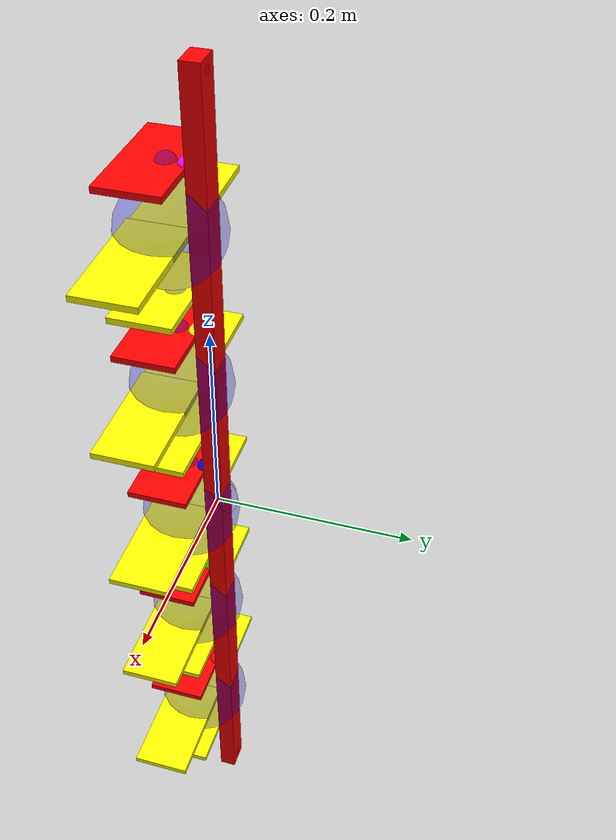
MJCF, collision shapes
<mujoco model="shelf_ivar_0678">
    <asset>
        <mesh file="shelf_ivar_0678/box.stl" name="box_mesh" scale="0.0005 0.0005 0.0005" />
        <mesh file="shelf_ivar_0678/column.stl" name="column_mesh" scale="0.0005 0.0005 0.0005" />
        <texture file="../textures/light-wood.png" name="tex-light-wood" type="2d" />
        <material name="light-wood" reflectance="0.5" texrepeat="20 20" texture="tex-light-wood" texuniform="true" />
    </asset>
    <equality>
        <weld active="false" body1="1_column" body2="2_box1" solimp="1 1 0.5" solref="0.01 0.3" />
        <weld active="false" body1="1_column" body2="3_box2" solimp="1 1 0.5" solref="0.01 0.3" />
        <weld active="false" body1="1_column" body2="4_box3" solimp="1 1 0.5" solref="0.01 0.3" />
        <weld active="false" body1="1_column" body2="5_box4" solimp="1 1 0.5" solref="0.01 0.3" />
        <weld active="false" body1="1_column" body2="6_box5" solimp="1 1 0.5" solref="0.01 0.3" />
    </equality>
    <worldbody>
        <body name="1_column" pos="0 0 0" quat="1 0 0 0">
            <geom density="1"  mesh="column_mesh" name="1_column_mesh" pos="0 0 0" rgba="0.82 0.71 0.55 1" type="mesh" contype="0" conaffinity="0" />
            <geom density="100"  name="noviz_collision_1_column" pos="0 0 0" solref="0.001 1" type="box" size="0.0135 0.009 0.45" rgba="1 0 0 1" />
            <site name="1_column_bottom_site" pos="0 0 -0.44" rgba="1 0 0 0.3" size="0.01" />
            <site name="1_column_top_site" pos="0.0 0.0 0.44" rgba="1 0 0 0.3" size="0.01" />
            <site name="1_column_horizontal_radius_site" pos="0 0 0" rgba="0 0 1 0.3" size="0.02" />
            <site name="col-box1,0,conn_site" pos="0 -0.01 -0.26" quat="0.707 0 0.707 0" rgba="1 0 0 1" size="0.01" />
            <site name="col-box2,0,conn_site" pos="0 -0.01 -0.10" quat="0.707 0 0.707 0" rgba="0 1 0 1" size="0.01" />
            <site name="col-box3,0,conn_site" pos="0 -0.01 0.04" quat="0.707 0 0.707 0" rgba="0 0 1 1" size="0.01" />
            <site name="col-box4,0,conn_site" pos="0 -0.01 0.20" quat="0.707 0 0.707 0" rgba="1 1 0 1" size="0.01" />
            <site name="col-box5,0,conn_site" pos="0 -0.01 0.36" quat="0.707 0 0.707 0" rgba="1 0 1 1" size="0.01" />
        </body>

        <body name="2_box1" pos="0 -0.03 -0.32" quat="1 0 0 0">
            <geom density="1" material="light-wood" mesh="box_mesh" name="2_box1_mesh" pos="0 0 0" rgba="0.82 0.71 0.55 1" type="mesh" contype="0" conaffinity="0" />
            <geom density="100"  name="noviz_collision_2_box1_top" pos="0 -0.01 0.06" solref="0.001 1" type="box" size="0.06 0.03 0.003" rgba="1 0 0 1" />
            <geom density="100"  name="noviz_collision_2_box1_bot" pos="0 -0.01 -0.06" solref="0.001 1" type="box" size="0.06 0.03 0.003" rgba="1 1 0 1" />
            <geom density="100"  name="noviz_collision_2_box1_side1" pos="-0.06 -0.01 0" euler="0 1.56  0" solref="0.001 1" type="box" size="0.06 0.03 0.003" rgba="1 1 0 1" />
            <geom density="100"  name="noviz_collision_2_box1_side2" pos="0.06 -0.01 0" euler="0 1.56  0" solref="0.001 1" type="box" size="0.06 0.03 0.003" rgba="1 1 0 1" />
            <site name="box1-col,0,conn_site" pos="0.0 0.025 0.06" quat="0.707 0 0.707 0" rgba="1 0 0 1" size="0.01" />
            <site name="2_box1_bottom_site" pos="0 0 -0.06" rgba="0 0 1 0.3" size="0.01" />
            <site name="2_box1_top_site" pos="0.0 0.0 0.06" rgba="0 0 1 0.3" size="0.01" />
            <site name="2_box1_horizontal_radius_site" pos="0 0 0" rgba="0 0 1 0.3" size="0.05" />

            <site name="2_box1_s1" pos="-0.06 0 0" rgba="0 0 1 0" size="0.01" />
            <site name="2_box1_s2" pos="0.06 0.0 0" rgba="0 0 1 0" size="0.01" />
            <site name="2_box1_s3" pos="0 -0.06 0" rgba="0 0 1 0" size="0.01" />
            <site name="2_box1_s4" pos="0.0 0.06 0" rgba="0 0 1 0" size="0.01" />
        </body>

        <body name="3_box2" pos="0 -0.03 -0.16" quat="1 0 0 0">
            <geom density="1" material="light-wood" mesh="box_mesh" name="3_box2_mesh" pos="0 0 0" rgba="0.82 0.71 0.55 1" type="mesh" contype="0" conaffinity="0" />
            <geom density="100"  name="noviz_collision_3_box2_top" pos="0 -0.01 0.06" solref="0.001 1" type="box" size="0.06 0.03 0.003" rgba="1 0 0 1" />
            <geom density="100"  name="noviz_collision_3_box2_bot" pos="0 -0.01 -0.06" solref="0.001 1" type="box" size="0.06 0.03 0.003" rgba="1 1 0 1" />
            <geom density="100"  name="noviz_collision_3_box2_side1" pos="-0.06 -0.01 0" euler="0 1.56  0" solref="0.001 1" type="box" size="0.06 0.03 0.003" rgba="1 1 0 1" />
            <geom density="100"  name="noviz_collision_3_box2_side2" pos="0.06 -0.01 0" euler="0 1.56  0" solref="0.001 1" type="box" size="0.06 0.03 0.003" rgba="1 1 0 1" />
            <site name="box2-col,0,conn_site" pos="0.0 0.025 0.06" quat="0.707 0 0.707 0" rgba="0 1 0 1" size="0.01" />
            <site name="3_box2_bottom_site" pos="0 0 -0.06" rgba="0 0 1 0.3" size="0.01" />
            <site name="3_box2_top_site" pos="0.0 0.0 0.06" rgba="0 0 1 0.3" size="0.01" />
            <site name="3_box2_horizontal_radius_site" pos="0 0 0" rgba="0 0 1 0.3" size="0.05" />

            <site name="3_box2_s1" pos="-0.06 0 0" rgba="0 0 1 0" size="0.01" />
            <site name="3_box2_s2" pos="0.06 0.0 0" rgba="0 0 1 0" size="0.01" />
            <site name="3_box2_s3" pos="0 -0.06 0" rgba="0 0 1 0" size="0.01" />
            <site name="3_box2_s4" pos="0.0 0.06 0" rgba="0 0 1 0" size="0.01" />
        </body>

        <body name="4_box3" pos="0 -0.03 -0.02" quat="1 0 0 0">
            <geom density="1" material="light-wood" mesh="box_mesh" name="4_box3_mesh" pos="0 0 0" rgba="0.82 0.71 0.55 1" type="mesh" contype="0" conaffinity="0" />
            <geom density="100"  name="noviz_collision_4_box3_top" pos="0 -0.01 0.06" solref="0.001 1" type="box" size="0.06 0.03 0.003" rgba="1 0 0 1" />
            <geom density="100"  name="noviz_collision_4_box3_bot" pos="0 -0.01 -0.06" solref="0.001 1" type="box" size="0.06 0.03 0.003" rgba="1 1 0 1" />
            <geom density="100"  name="noviz_collision_4_box3_side1" pos="-0.06 -0.01 0" euler="0 1.56  0" solref="0.001 1" type="box" size="0.06 0.03 0.003" rgba="1 1 0 1" />
            <geom density="100"  name="noviz_collision_4_box3_side2" pos="0.06 -0.01 0" euler="0 1.56  0" solref="0.001 1" type="box" size="0.06 0.03 0.003" rgba="1 1 0 1" />
            <site name="box3-col,0,conn_site" pos="0.0 0.025 0.06" quat="0.707 0 0.707 0" rgba="0 0 1 1" size="0.01" />
            <site name="4_box3_bottom_site" pos="0 0 -0.06" rgba="0 0 1 0.3" size="0.01" />
            <site name="4_box3_top_site" pos="0.0 0.0 0.06" rgba="0 0 1 0.3" size="0.01" />
            <site name="4_box3_horizontal_radius_site" pos="0 0 0" rgba="0 0 1 0.3" size="0.05" />

            <site name="4_box3_s1" pos="-0.06 0 0" rgba="0 0 1 0" size="0.01" />
            <site name="4_box3_s2" pos="0.06 0.0 0" rgba="0 0 1 0" size="0.01" />
            <site name="4_box3_s3" pos="0 -0.06 0" rgba="0 0 1 0" size="0.01" />
            <site name="4_box3_s4" pos="0.0 0.06 0" rgba="0 0 1 0" size="0.01" />
        </body>

        <body name="5_box4" pos="0 -0.03 0.14" quat="1 0 0 0">
            <geom density="1" material="light-wood" mesh="box_mesh" name="5_box4_mesh" pos="0 0 0" rgba="0.82 0.71 0.55 1" type="mesh" contype="0" conaffinity="0" />
            <geom density="100"  name="noviz_collision_5_box4_top" pos="0 -0.01 0.06" solref="0.001 1" type="box" size="0.06 0.03 0.003" rgba="1 0 0 1" />
            <geom density="100"  name="noviz_collision_5_box4_bot" pos="0 -0.01 -0.06" solref="0.001 1" type="box" size="0.06 0.03 0.003" rgba="1 1 0 1" />
            <geom density="100"  name="noviz_collision_5_box4_side1" pos="-0.06 -0.01 0" euler="0 1.56  0" solref="0.001 1" type="box" size="0.06 0.03 0.003" rgba="1 1 0 1" />
            <geom density="100"  name="noviz_collision_5_box4_side2" pos="0.06 -0.01 0" euler="0 1.56  0" solref="0.001 1" type="box" size="0.06 0.03 0.003" rgba="1 1 0 1" />
            <site name="box4-col,0,conn_site" pos="0.0 0.025 0.06" quat="0.707 0 0.707 0" rgba="1 1 0 1" size="0.01" />
            <site name="5_box4_bottom_site" pos="0 0 -0.06" rgba="0 0 1 0.3" size="0.01" />
            <site name="5_box4_top_site" pos="0.0 0.0 0.06" rgba="0 0 1 0.3" size="0.01" />
            <site name="5_box4_horizontal_radius_site" pos="0 0 0" rgba="0 0 1 0.3" size="0.05" />

            <site name="5_box4_s1" pos="-0.06 0 0" rgba="0 0 1 0" size="0.01" />
            <site name="5_box4_s2" pos="0.06 0.0 0" rgba="0 0 1 0" size="0.01" />
            <site name="5_box4_s3" pos="0 -0.06 0" rgba="0 0 1 0" size="0.01" />
            <site name="5_box4_s4" pos="0.0 0.06 0" rgba="0 0 1 0" size="0.01" />
        </body>

        <body name="6_box5" pos="0 -0.03 0.30" quat="1 0 0 0">
            <geom density="1" material="light-wood" mesh="box_mesh" name="6_box5_mesh" pos="0 0 0" rgba="0.82 0.71 0.55 1" type="mesh" contype="0" conaffinity="0" />
            <geom density="100"  name="noviz_collision_6_box5_top" pos="0 -0.01 0.06" solref="0.001 1" type="box" size="0.06 0.03 0.003" rgba="1 0 0 1" />
            <geom density="100"  name="noviz_collision_6_box5_bot" pos="0 -0.01 -0.06" solref="0.001 1" type="box" size="0.06 0.03 0.003" rgba="1 1 0 1" />
            <geom density="100"  name="noviz_collision_6_box5_side1" pos="-0.06 -0.01 0" euler="0 1.56  0" solref="0.001 1" type="box" size="0.06 0.03 0.003" rgba="1 1 0 1" />
            <geom density="100"  name="noviz_collision_6_box5_side2" pos="0.06 -0.01 0" euler="0 1.56  0" solref="0.001 1" type="box" size="0.06 0.03 0.003" rgba="1 1 0 1" />
            <site name="box5-col,0,conn_site" pos="0.0 0.025 0.06" quat="0.707 0 0.707 0" rgba="1 0 1 1" size="0.01" />
            <site name="6_box5_bottom_site" pos="0 0 -0.06" rgba="0 0 1 0.3" size="0.01" />
            <site name="6_box5_top_site" pos="0.0 0.0 0.06" rgba="0 0 1 0.3" size="0.01" />
            <site name="6_box5_horizontal_radius_site" pos="0 0 0" rgba="0 0 1 0.3" size="0.05" />

            <site name="6_box5_s1" pos="-0.06 0 0" rgba="0 0 1 0" size="0.01" />
            <site name="6_box5_s2" pos="0.06 0.0 0" rgba="0 0 1 0" size="0.01" />
            <site name="6_box5_s3" pos="0 -0.06 0" rgba="0 0 1 0" size="0.01" />
            <site name="6_box5_s4" pos="0.0 0.06 0" rgba="0 0 1 0" size="0.01" />
        </body>
    </worldbody>
</mujoco>
